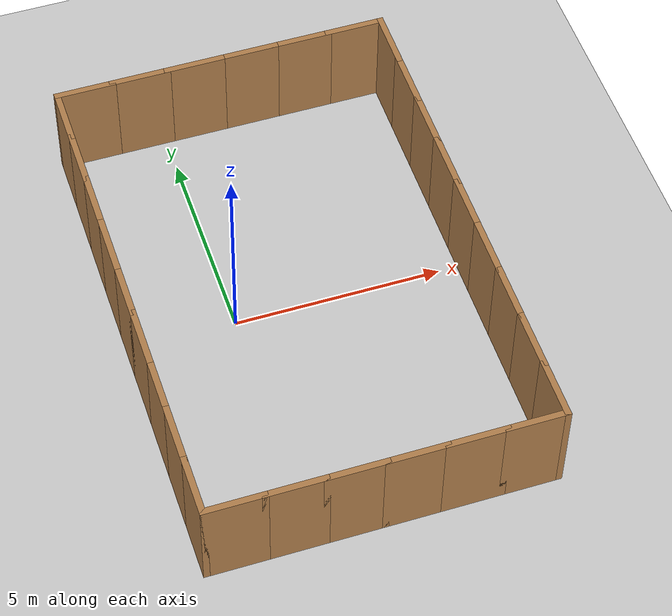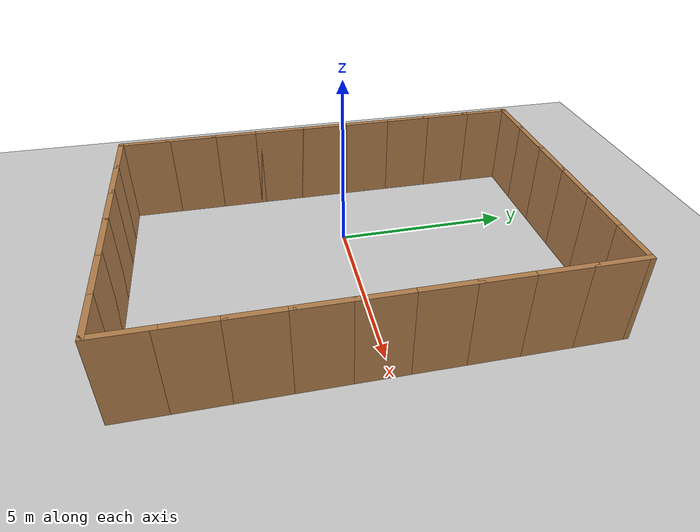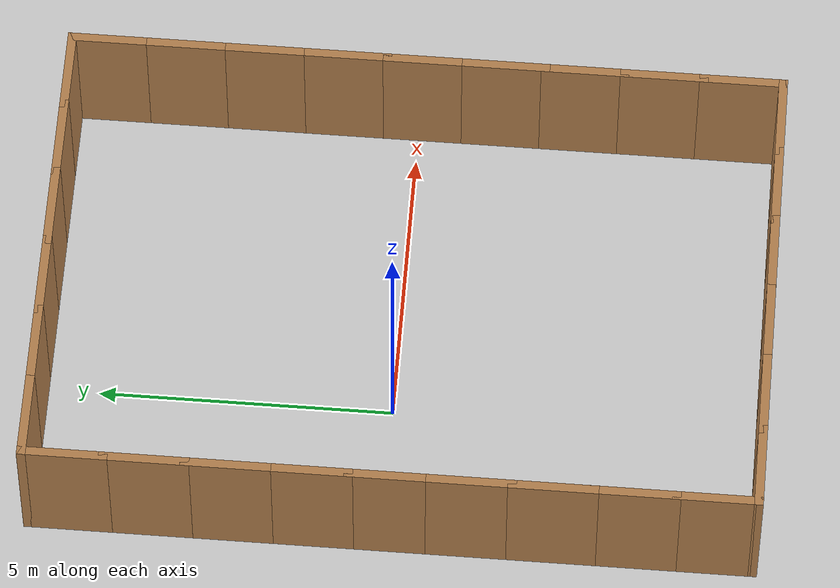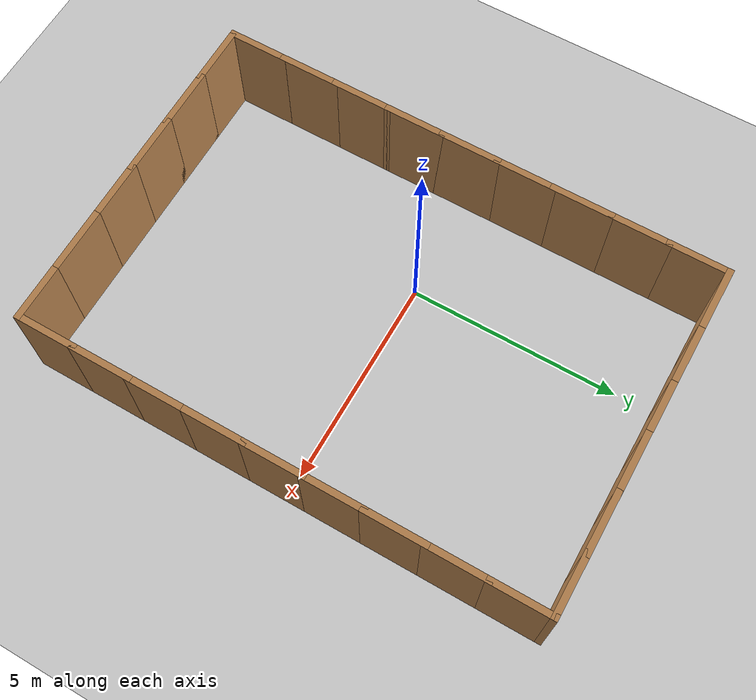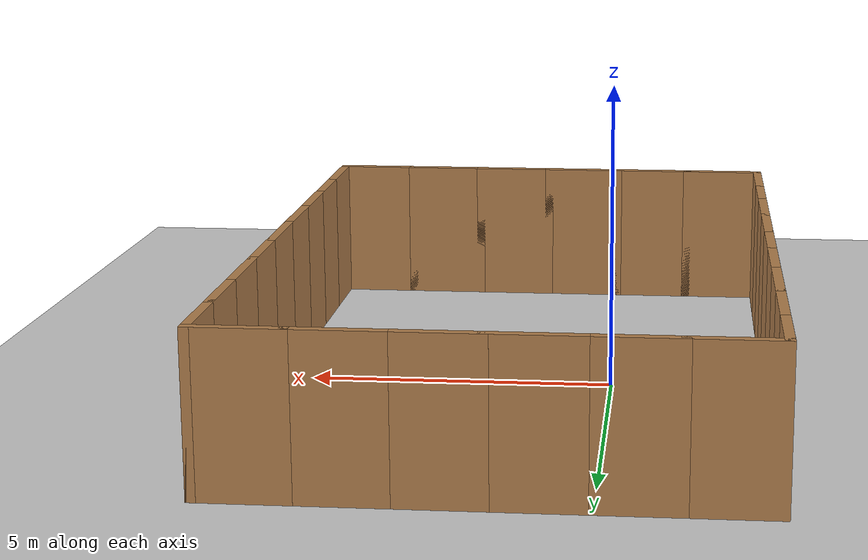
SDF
<sdf version="1.7">
 <world name="default">
  <light name="sun" type="directional">
   <pose>0 0 10 0 -0 0</pose>
   <diffuse>0.8 0.8 0.8 1</diffuse>
   <specular>0.2 0.2 0.2 1</specular>
   <attenuation>
    <range>1000</range>
    <constant>0.9</constant>
    <linear>0.01</linear>
    <quadratic>0.001</quadratic>
   </attenuation>
   <direction>-0.5 0.1 -0.9</direction>
   <spot><inner_angle>0</inner_angle><outer_angle>0</outer_angle><falloff>0</falloff></spot>
  </light>
  <model name="ground_plane">
   <static>1</static>
   <link name="link">
    <collision name="collision">
     <geometry><plane><normal>0 0 1</normal><size>100 100</size></plane></geometry>
     <surface>
      <contact><collide_bitmask>65535</collide_bitmask></contact>
      <friction><ode><mu>100</mu><mu2>50</mu2></ode></friction>
     </surface>
    </collision>
    <visual name="visual">
     <cast_shadows>0</cast_shadows>
     <geometry><plane><normal>0 0 1</normal><size>100 100</size></plane></geometry>
     <material>
      <script><uri>file://media/materials/scripts/gazebo.material</uri><name>Gazebo/Grey</name></script>
     </material>
    </visual>
   </link>
  </model>
  <gravity>0 0 -9.8</gravity>
  <magnetic_field>6e-06 2.3e-05 -4.2e-05</magnetic_field>
  <atmosphere type="adiabatic"/>
  <physics type="ode">
   <max_step_size>0.001</max_step_size>
   <real_time_factor>1</real_time_factor>
   <real_time_update_rate>1000</real_time_update_rate>
  </physics>
  <scene><ambient>0.4 0.4 0.4 1</ambient><background>0.7 0.7 0.7 1</background><shadows>1</shadows></scene>
  <audio><device>default</device></audio>
  <spherical_coordinates>
   <surface_model>EARTH_WGS84</surface_model>
   <latitude_deg>0</latitude_deg>
   <longitude_deg>0</longitude_deg>
   <elevation>0</elevation>
   <heading_deg>0</heading_deg>
  </spherical_coordinates>
  <model name="test3_building_smaller">
   <pose>1.48343 -0.143359 0 0 -0 0</pose>
   <link name="Wall_10">
    <collision name="Wall_10_Collision">
     <geometry><box><size>1.5 0.15 2.5</size></box></geometry>
     <pose>0 0 1.25 0 -0 0</pose>
    </collision>
    <visual name="Wall_10_Visual">
     <pose>0 0 1.25 0 -0 0</pose>
     <geometry><box><size>1.5 0.15 2.5</size></box></geometry>
     <material>
      <script><uri>file://media/materials/scripts/gazebo.material</uri><name>Gazebo/Wood</name></script>
      <ambient>1 1 1 1</ambient>
     </material>
     <meta><layer>0</layer></meta>
    </visual>
    <pose>-4.05 -5.4 0 0 -0 -1.5708</pose>
   </link>
   <link name="Wall_11">
    <collision name="Wall_11_Collision">
     <geometry><box><size>1.5 0.15 2.5</size></box></geometry>
     <pose>0 0 1.25 0 -0 0</pose>
    </collision>
    <visual name="Wall_11_Visual">
     <pose>0 0 1.25 0 -0 0</pose>
     <geometry><box><size>1.5 0.15 2.5</size></box></geometry>
     <material>
      <script><uri>file://media/materials/scripts/gazebo.material</uri><name>Gazebo/Wood</name></script>
      <ambient>1 1 1 1</ambient>
     </material>
     <meta><layer>0</layer></meta>
    </visual>
    <pose>-3.375 -6.075 0 0 -0 0</pose>
   </link>
   <link name="Wall_12">
    <collision name="Wall_12_Collision">
     <geometry><box><size>1.5 0.15 2.5</size></box></geometry>
     <pose>0 0 1.25 0 -0 0</pose>
    </collision>
    <visual name="Wall_12_Visual">
     <pose>0 0 1.25 0 -0 0</pose>
     <geometry><box><size>1.5 0.15 2.5</size></box></geometry>
     <material>
      <script><uri>file://media/materials/scripts/gazebo.material</uri><name>Gazebo/Wood</name></script>
      <ambient>1 1 1 1</ambient>
     </material>
     <meta><layer>0</layer></meta>
    </visual>
    <pose>-2.025 -6.075 0 0 -0 0</pose>
   </link>
   <link name="Wall_13">
    <collision name="Wall_13_Collision">
     <geometry><box><size>1.5 0.15 2.5</size></box></geometry>
     <pose>0 0 1.25 0 -0 0</pose>
    </collision>
    <visual name="Wall_13_Visual">
     <pose>0 0 1.25 0 -0 0</pose>
     <geometry><box><size>1.5 0.15 2.5</size></box></geometry>
     <material>
      <script><uri>file://media/materials/scripts/gazebo.material</uri><name>Gazebo/Wood</name></script>
      <ambient>1 1 1 1</ambient>
     </material>
     <meta><layer>0</layer></meta>
    </visual>
    <pose>-0.675 -6.075 0 0 -0 0</pose>
   </link>
   <link name="Wall_14">
    <collision name="Wall_14_Collision">
     <geometry><box><size>1.5 0.15 2.5</size></box></geometry>
     <pose>0 0 1.25 0 -0 0</pose>
    </collision>
    <visual name="Wall_14_Visual">
     <pose>0 0 1.25 0 -0 0</pose>
     <geometry><box><size>1.5 0.15 2.5</size></box></geometry>
     <material>
      <script><uri>file://media/materials/scripts/gazebo.material</uri><name>Gazebo/Wood</name></script>
      <ambient>1 1 1 1</ambient>
     </material>
     <meta><layer>0</layer></meta>
    </visual>
    <pose>0.675 -6.075 0 0 -0 0</pose>
   </link>
   <link name="Wall_15">
    <collision name="Wall_15_Collision">
     <geometry><box><size>1.5 0.15 2.5</size></box></geometry>
     <pose>0 0 1.25 0 -0 0</pose>
    </collision>
    <visual name="Wall_15_Visual">
     <pose>0 0 1.25 0 -0 0</pose>
     <geometry><box><size>1.5 0.15 2.5</size></box></geometry>
     <material>
      <script><uri>file://media/materials/scripts/gazebo.material</uri><name>Gazebo/Wood</name></script>
      <ambient>1 1 1 1</ambient>
     </material>
     <meta><layer>0</layer></meta>
    </visual>
    <pose>2.025 -6.075 0 0 -0 0</pose>
   </link>
   <link name="Wall_16">
    <collision name="Wall_16_Collision">
     <geometry><box><size>1.5 0.15 2.5</size></box></geometry>
     <pose>0 0 1.25 0 -0 0</pose>
    </collision>
    <visual name="Wall_16_Visual">
     <pose>0 0 1.25 0 -0 0</pose>
     <geometry><box><size>1.5 0.15 2.5</size></box></geometry>
     <material>
      <script><uri>file://media/materials/scripts/gazebo.material</uri><name>Gazebo/Wood</name></script>
      <ambient>1 1 1 1</ambient>
     </material>
     <meta><layer>0</layer></meta>
    </visual>
    <pose>3.375 -6.075 0 0 -0 0</pose>
   </link>
   <link name="Wall_17">
    <collision name="Wall_17_Collision">
     <geometry><box><size>1.5 0.15 2.5</size></box></geometry>
     <pose>0 0 1.25 0 -0 0</pose>
    </collision>
    <visual name="Wall_17_Visual">
     <pose>0 0 1.25 0 -0 0</pose>
     <geometry><box><size>1.5 0.15 2.5</size></box></geometry>
     <material>
      <script><uri>file://media/materials/scripts/gazebo.material</uri><name>Gazebo/Wood</name></script>
      <ambient>1 1 1 1</ambient>
     </material>
     <meta><layer>0</layer></meta>
    </visual>
    <pose>4.05 -5.4 0 0 -0 1.5708</pose>
   </link>
   <link name="Wall_18">
    <collision name="Wall_18_Collision">
     <geometry><box><size>1.5 0.15 2.5</size></box></geometry>
     <pose>0 0 1.25 0 -0 0</pose>
    </collision>
    <visual name="Wall_18_Visual">
     <pose>0 0 1.25 0 -0 0</pose>
     <geometry><box><size>1.5 0.15 2.5</size></box></geometry>
     <material>
      <script><uri>file://media/materials/scripts/gazebo.material</uri><name>Gazebo/Wood</name></script>
      <ambient>1 1 1 1</ambient>
     </material>
     <meta><layer>0</layer></meta>
    </visual>
    <pose>4.05 -4.05 0 0 -0 1.5708</pose>
   </link>
   <link name="Wall_19">
    <collision name="Wall_19_Collision">
     <geometry><box><size>1.5 0.15 2.5</size></box></geometry>
     <pose>0 0 1.25 0 -0 0</pose>
    </collision>
    <visual name="Wall_19_Visual">
     <pose>0 0 1.25 0 -0 0</pose>
     <geometry><box><size>1.5 0.15 2.5</size></box></geometry>
     <material>
      <script><uri>file://media/materials/scripts/gazebo.material</uri><name>Gazebo/Wood</name></script>
      <ambient>1 1 1 1</ambient>
     </material>
     <meta><layer>0</layer></meta>
    </visual>
    <pose>4.05 -2.7 0 0 -0 1.5708</pose>
   </link>
   <link name="Wall_20">
    <collision name="Wall_20_Collision">
     <geometry><box><size>1.5 0.15 2.5</size></box></geometry>
     <pose>0 0 1.25 0 -0 0</pose>
    </collision>
    <visual name="Wall_20_Visual">
     <pose>0 0 1.25 0 -0 0</pose>
     <geometry><box><size>1.5 0.15 2.5</size></box></geometry>
     <material>
      <script><uri>file://media/materials/scripts/gazebo.material</uri><name>Gazebo/Wood</name></script>
      <ambient>1 1 1 1</ambient>
     </material>
     <meta><layer>0</layer></meta>
    </visual>
    <pose>4.05 -1.35 0 0 -0 1.5708</pose>
   </link>
   <link name="Wall_21">
    <collision name="Wall_21_Collision">
     <geometry><box><size>1.5 0.15 2.5</size></box></geometry>
     <pose>0 0 1.25 0 -0 0</pose>
    </collision>
    <visual name="Wall_21_Visual">
     <pose>0 0 1.25 0 -0 0</pose>
     <geometry><box><size>1.5 0.15 2.5</size></box></geometry>
     <material>
      <script><uri>file://media/materials/scripts/gazebo.material</uri><name>Gazebo/Wood</name></script>
      <ambient>1 1 1 1</ambient>
     </material>
     <meta><layer>0</layer></meta>
    </visual>
    <pose>4.05 -0 0 0 -0 1.5708</pose>
   </link>
   <link name="Wall_23">
    <collision name="Wall_23_Collision">
     <geometry><box><size>1.5 0.15 2.5</size></box></geometry>
     <pose>0 0 1.25 0 -0 0</pose>
    </collision>
    <visual name="Wall_23_Visual">
     <pose>0 0 1.25 0 -0 0</pose>
     <geometry><box><size>1.5 0.15 2.5</size></box></geometry>
     <material>
      <script><uri>file://media/materials/scripts/gazebo.material</uri><name>Gazebo/Wood</name></script>
      <ambient>1 1 1 1</ambient>
     </material>
     <meta><layer>0</layer></meta>
    </visual>
    <pose>4.05 1.35 0 0 -0 1.5708</pose>
   </link>
   <link name="Wall_24">
    <collision name="Wall_24_Collision">
     <geometry><box><size>1.5 0.15 2.5</size></box></geometry>
     <pose>0 0 1.25 0 -0 0</pose>
    </collision>
    <visual name="Wall_24_Visual">
     <pose>0 0 1.25 0 -0 0</pose>
     <geometry><box><size>1.5 0.15 2.5</size></box></geometry>
     <material>
      <script><uri>file://media/materials/scripts/gazebo.material</uri><name>Gazebo/Wood</name></script>
      <ambient>1 1 1 1</ambient>
     </material>
     <meta><layer>0</layer></meta>
    </visual>
    <pose>4.05 2.7 0 0 -0 1.5708</pose>
   </link>
   <link name="Wall_26">
    <collision name="Wall_26_Collision">
     <geometry><box><size>1.5 0.15 2.5</size></box></geometry>
     <pose>0 0 1.25 0 -0 0</pose>
    </collision>
    <visual name="Wall_26_Visual">
     <pose>0 0 1.25 0 -0 0</pose>
     <geometry><box><size>1.5 0.15 2.5</size></box></geometry>
     <material>
      <script><uri>file://media/materials/scripts/gazebo.material</uri><name>Gazebo/Wood</name></script>
      <ambient>1 1 1 1</ambient>
     </material>
     <meta><layer>0</layer></meta>
    </visual>
    <pose>4.05 4.05 0 0 -0 1.5708</pose>
   </link>
   <link name="Wall_27">
    <collision name="Wall_27_Collision">
     <geometry><box><size>1.5 0.15 2.5</size></box></geometry>
     <pose>0 0 1.25 0 -0 0</pose>
    </collision>
    <visual name="Wall_27_Visual">
     <pose>0 0 1.25 0 -0 0</pose>
     <geometry><box><size>1.5 0.15 2.5</size></box></geometry>
     <material>
      <script><uri>file://media/materials/scripts/gazebo.material</uri><name>Gazebo/Wood</name></script>
      <ambient>1 1 1 1</ambient>
     </material>
     <meta><layer>0</layer></meta>
    </visual>
    <pose>4.05 5.4 0 0 -0 1.5708</pose>
   </link>
   <link name="Wall_28">
    <collision name="Wall_28_Collision">
     <geometry><box><size>1.5 0.15 2.5</size></box></geometry>
     <pose>0 0 1.25 0 -0 0</pose>
    </collision>
    <visual name="Wall_28_Visual">
     <pose>0 0 1.25 0 -0 0</pose>
     <geometry><box><size>1.5 0.15 2.5</size></box></geometry>
     <material>
      <script><uri>file://media/materials/scripts/gazebo.material</uri><name>Gazebo/Wood</name></script>
      <ambient>1 1 1 1</ambient>
     </material>
     <meta><layer>0</layer></meta>
    </visual>
    <pose>3.375 6.075 0 0 -0 3.14159</pose>
   </link>
   <link name="Wall_29">
    <collision name="Wall_29_Collision">
     <geometry><box><size>1.5 0.15 2.5</size></box></geometry>
     <pose>0 0 1.25 0 -0 0</pose>
    </collision>
    <visual name="Wall_29_Visual">
     <pose>0 0 1.25 0 -0 0</pose>
     <geometry><box><size>1.5 0.15 2.5</size></box></geometry>
     <material>
      <script><uri>file://media/materials/scripts/gazebo.material</uri><name>Gazebo/Wood</name></script>
      <ambient>1 1 1 1</ambient>
     </material>
     <meta><layer>0</layer></meta>
    </visual>
    <pose>2.025 6.075 0 0 -0 3.14159</pose>
   </link>
   <link name="Wall_30">
    <collision name="Wall_30_Collision">
     <geometry><box><size>1.5 0.15 2.5</size></box></geometry>
     <pose>0 0 1.25 0 -0 0</pose>
    </collision>
    <visual name="Wall_30_Visual">
     <pose>0 0 1.25 0 -0 0</pose>
     <geometry><box><size>1.5 0.15 2.5</size></box></geometry>
     <material>
      <script><uri>file://media/materials/scripts/gazebo.material</uri><name>Gazebo/Wood</name></script>
      <ambient>1 1 1 1</ambient>
     </material>
     <meta><layer>0</layer></meta>
    </visual>
    <pose>0.675 6.075 0 0 -0 3.14159</pose>
   </link>
   <link name="Wall_31">
    <collision name="Wall_31_Collision">
     <geometry><box><size>1.5 0.15 2.5</size></box></geometry>
     <pose>0 0 1.25 0 -0 0</pose>
    </collision>
    <visual name="Wall_31_Visual">
     <pose>0 0 1.25 0 -0 0</pose>
     <geometry><box><size>1.5 0.15 2.5</size></box></geometry>
     <material>
      <script><uri>file://media/materials/scripts/gazebo.material</uri><name>Gazebo/Wood</name></script>
      <ambient>1 1 1 1</ambient>
     </material>
     <meta><layer>0</layer></meta>
    </visual>
    <pose>-0.675 6.075 0 0 -0 3.14159</pose>
   </link>
   <link name="Wall_32">
    <collision name="Wall_32_Collision">
     <geometry><box><size>1.5 0.15 2.5</size></box></geometry>
     <pose>0 0 1.25 0 -0 0</pose>
    </collision>
    <visual name="Wall_32_Visual">
     <pose>0 0 1.25 0 -0 0</pose>
     <geometry><box><size>1.5 0.15 2.5</size></box></geometry>
     <material>
      <script><uri>file://media/materials/scripts/gazebo.material</uri><name>Gazebo/Wood</name></script>
      <ambient>1 1 1 1</ambient>
     </material>
     <meta><layer>0</layer></meta>
    </visual>
    <pose>-2.025 6.075 0 0 -0 3.14159</pose>
   </link>
   <link name="Wall_33">
    <collision name="Wall_33_Collision">
     <geometry><box><size>1.5 0.15 2.5</size></box></geometry>
     <pose>0 0 1.25 0 -0 0</pose>
    </collision>
    <visual name="Wall_33_Visual">
     <pose>0 0 1.25 0 -0 0</pose>
     <geometry><box><size>1.5 0.15 2.5</size></box></geometry>
     <material>
      <script><uri>file://media/materials/scripts/gazebo.material</uri><name>Gazebo/Wood</name></script>
      <ambient>1 1 1 1</ambient>
     </material>
     <meta><layer>0</layer></meta>
    </visual>
    <pose>-3.375 6.075 0 0 -0 3.14159</pose>
   </link>
   <link name="Wall_34">
    <collision name="Wall_34_Collision">
     <geometry><box><size>1.5 0.15 2.5</size></box></geometry>
     <pose>0 0 1.25 0 -0 0</pose>
    </collision>
    <visual name="Wall_34_Visual">
     <pose>0 0 1.25 0 -0 0</pose>
     <geometry><box><size>1.5 0.15 2.5</size></box></geometry>
     <material>
      <script><uri>file://media/materials/scripts/gazebo.material</uri><name>Gazebo/Wood</name></script>
      <ambient>1 1 1 1</ambient>
     </material>
     <meta><layer>0</layer></meta>
    </visual>
    <pose>-4.05 5.4 0 0 -0 -1.5708</pose>
   </link>
   <link name="Wall_35">
    <collision name="Wall_35_Collision">
     <geometry><box><size>1.5 0.15 2.5</size></box></geometry>
     <pose>0 0 1.25 0 -0 0</pose>
    </collision>
    <visual name="Wall_35_Visual">
     <pose>0 0 1.25 0 -0 0</pose>
     <geometry><box><size>1.5 0.15 2.5</size></box></geometry>
     <material>
      <script><uri>file://media/materials/scripts/gazebo.material</uri><name>Gazebo/Wood</name></script>
      <ambient>1 1 1 1</ambient>
     </material>
     <meta><layer>0</layer></meta>
    </visual>
    <pose>-4.05 4.05 0 0 -0 -1.5708</pose>
   </link>
   <link name="Wall_36">
    <collision name="Wall_36_Collision">
     <geometry><box><size>1.5 0.15 2.5</size></box></geometry>
     <pose>0 0 1.25 0 -0 0</pose>
    </collision>
    <visual name="Wall_36_Visual">
     <pose>0 0 1.25 0 -0 0</pose>
     <geometry><box><size>1.5 0.15 2.5</size></box></geometry>
     <material>
      <script><uri>file://media/materials/scripts/gazebo.material</uri><name>Gazebo/Wood</name></script>
      <ambient>1 1 1 1</ambient>
     </material>
     <meta><layer>0</layer></meta>
    </visual>
    <pose>-4.05 2.7 0 0 -0 -1.5708</pose>
   </link>
   <link name="Wall_37">
    <collision name="Wall_37_Collision">
     <geometry><box><size>1.5 0.15 2.5</size></box></geometry>
     <pose>0 0 1.25 0 -0 0</pose>
    </collision>
    <visual name="Wall_37_Visual">
     <pose>0 0 1.25 0 -0 0</pose>
     <geometry><box><size>1.5 0.15 2.5</size></box></geometry>
     <material>
      <script><uri>file://media/materials/scripts/gazebo.material</uri><name>Gazebo/Wood</name></script>
      <ambient>1 1 1 1</ambient>
     </material>
     <meta><layer>0</layer></meta>
    </visual>
    <pose>-4.05 1.35 0 0 -0 -1.5708</pose>
   </link>
   <link name="Wall_38">
    <collision name="Wall_38_Collision">
     <geometry><box><size>1.5 0.15 2.5</size></box></geometry>
     <pose>0 0 1.25 0 -0 0</pose>
    </collision>
    <visual name="Wall_38_Visual">
     <pose>0 0 1.25 0 -0 0</pose>
     <geometry><box><size>1.5 0.15 2.5</size></box></geometry>
     <material>
      <script><uri>file://media/materials/scripts/gazebo.material</uri><name>Gazebo/Wood</name></script>
      <ambient>1 1 1 1</ambient>
     </material>
     <meta><layer>0</layer></meta>
    </visual>
    <pose>-4.05 -0 0 0 -0 -1.5708</pose>
   </link>
   <link name="Wall_6">
    <collision name="Wall_6_Collision">
     <geometry><box><size>1.5 0.15 2.5</size></box></geometry>
     <pose>0 0 1.25 0 -0 0</pose>
    </collision>
    <visual name="Wall_6_Visual">
     <pose>0 0 1.25 0 -0 0</pose>
     <geometry><box><size>1.5 0.15 2.5</size></box></geometry>
     <material>
      <script><uri>file://media/materials/scripts/gazebo.material</uri><name>Gazebo/Wood</name></script>
      <ambient>1 1 1 1</ambient>
     </material>
     <meta><layer>0</layer></meta>
    </visual>
    <pose>-4.05 -1.35 0 0 -0 1.5708</pose>
   </link>
   <link name="Wall_8">
    <collision name="Wall_8_Collision">
     <geometry><box><size>1.5 0.15 2.5</size></box></geometry>
     <pose>0 0 1.25 0 -0 0</pose>
    </collision>
    <visual name="Wall_8_Visual">
     <pose>0 0 1.25 0 -0 0</pose>
     <geometry><box><size>1.5 0.15 2.5</size></box></geometry>
     <material>
      <script><uri>file://media/materials/scripts/gazebo.material</uri><name>Gazebo/Wood</name></script>
      <ambient>1 1 1 1</ambient>
     </material>
     <meta><layer>0</layer></meta>
    </visual>
    <pose>-4.05 -2.7 0 0 -0 -1.5708</pose>
   </link>
   <link name="Wall_9">
    <collision name="Wall_9_Collision">
     <geometry><box><size>1.5 0.15 2.5</size></box></geometry>
     <pose>0 0 1.25 0 -0 0</pose>
    </collision>
    <visual name="Wall_9_Visual">
     <pose>0 0 1.25 0 -0 0</pose>
     <geometry><box><size>1.5 0.15 2.5</size></box></geometry>
     <material>
      <script><uri>file://media/materials/scripts/gazebo.material</uri><name>Gazebo/Wood</name></script>
      <ambient>1 1 1 1</ambient>
     </material>
     <meta><layer>0</layer></meta>
    </visual>
    <pose>-4.05 -4.05 0 0 -0 -1.5708</pose>
   </link>
   <static>1</static>
  </model>
 </world>
</sdf>
